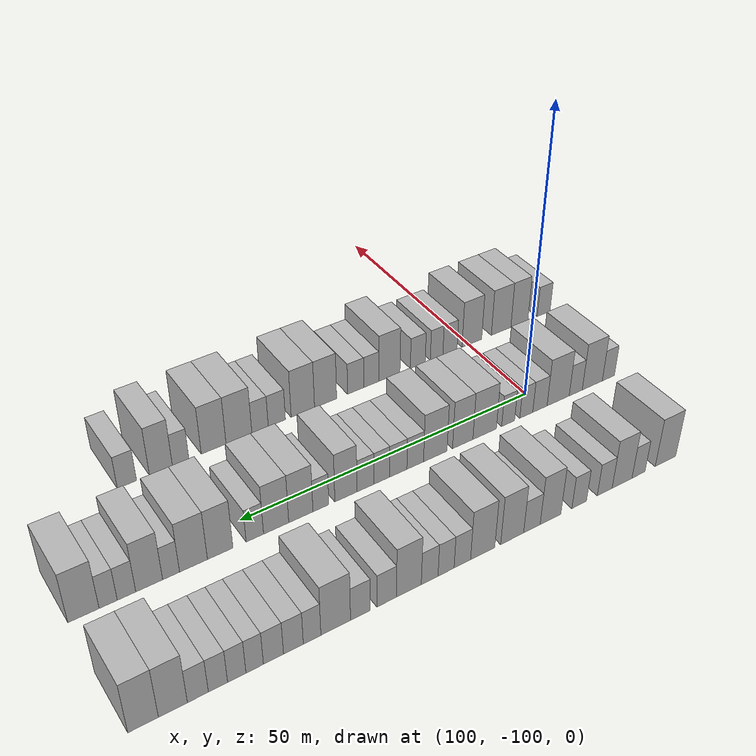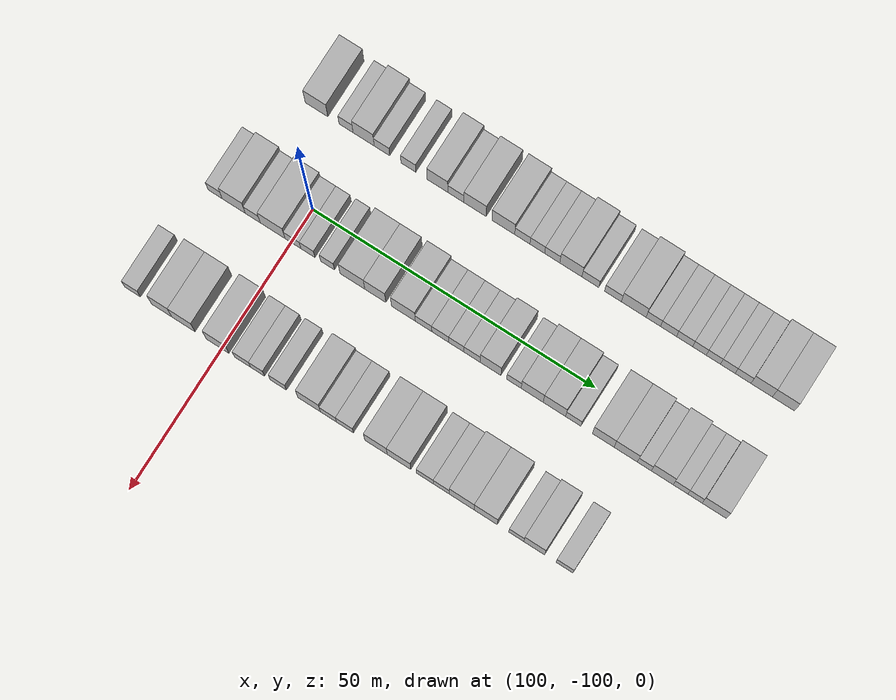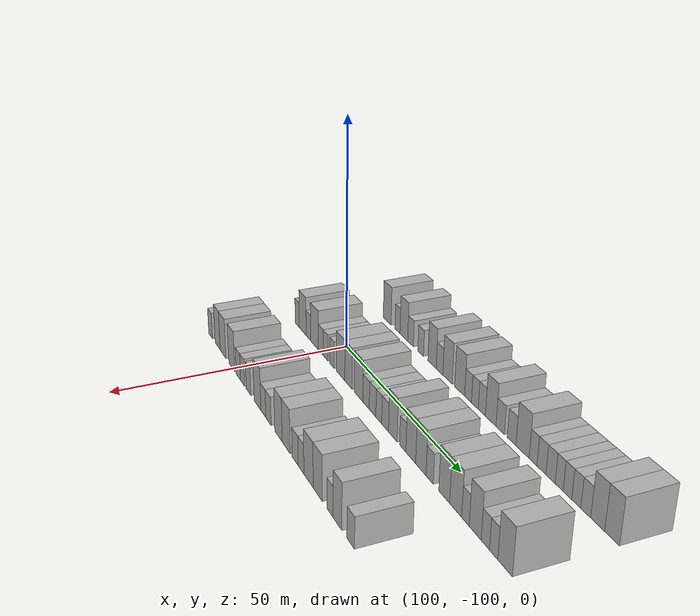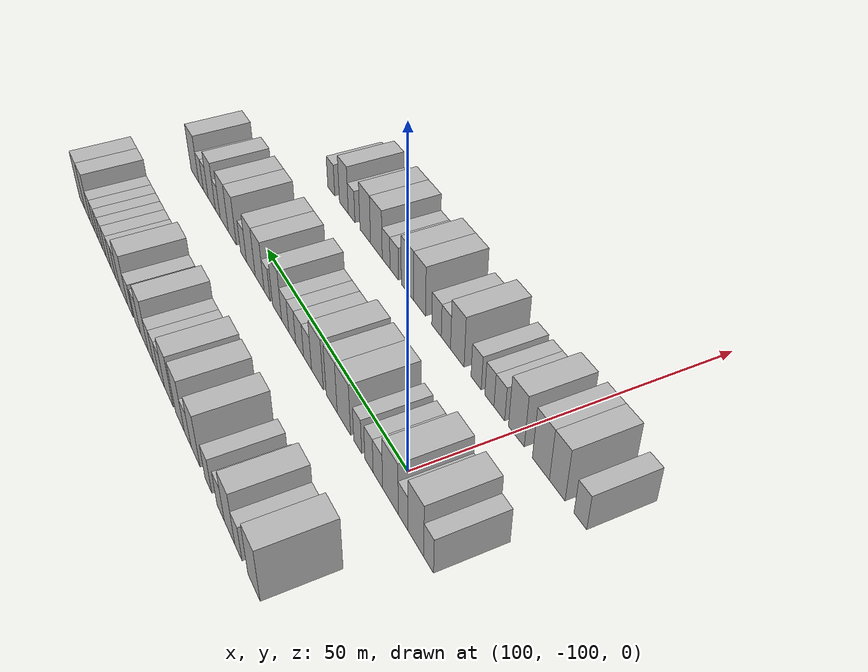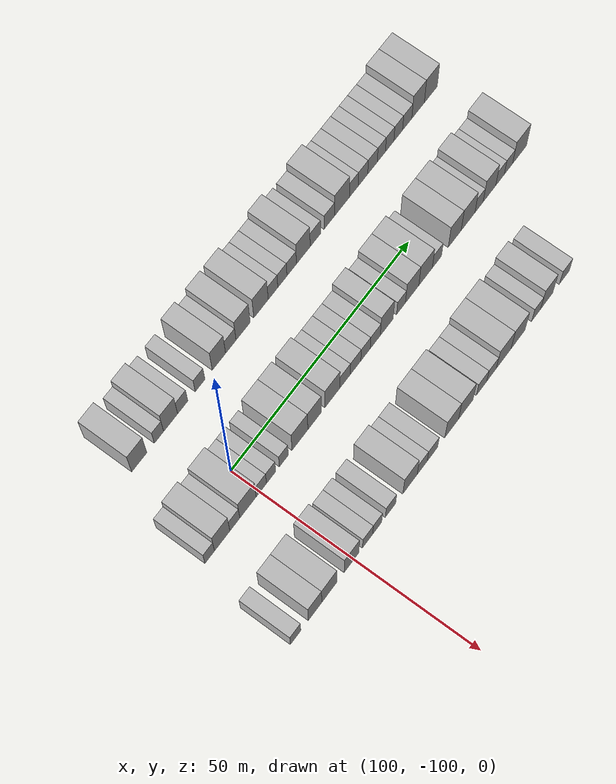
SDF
<sdf version="1.6">
 <world name="default">
  <model name="building_582">
   <static>1</static>
   <pose>82.0000 -107.8213 0 0.000000 0.000000 0.000000</pose>
   <link name="link">
    <pose>0 0 4.50 0 0 0</pose>
    <collision name="collision"><geometry><box><size>10.0000 4.0475 9.0000</size></box></geometry></collision>
    <visual name="visual">
     <cast_shadows>0</cast_shadows>
     <geometry><box><size>10.0000 4.0475 9.0000</size></box></geometry>
     <material>
      <script>
       <uri>model://HANNAS_wall/materials/scripts</uri>
       <uri>model://HANNAS_wall/materials/textures</uri>
       <name>vrc/HANNAS_wall</name>
      </script>
     </material>
    </visual>
   </link>
  </model>
  <model name="building_583">
   <static>1</static>
   <pose>82.0000 -102.5463 0 0.000000 0.000000 0.000000</pose>
   <link name="link">
    <pose>0 0 3.00 0 0 0</pose>
    <collision name="collision"><geometry><box><size>10.0000 2.5025 6.0000</size></box></geometry></collision>
    <visual name="visual">
     <cast_shadows>0</cast_shadows>
     <geometry><box><size>10.0000 2.5025 6.0000</size></box></geometry>
     <material>
      <script>
       <uri>model://HANNAS_wall/materials/scripts</uri>
       <uri>model://HANNAS_wall/materials/textures</uri>
       <name>vrc/HANNAS_wall</name>
      </script>
     </material>
    </visual>
   </link>
  </model>
  <model name="building_584">
   <static>1</static>
   <pose>82.0000 -99.4051 0 0.000000 0.000000 0.000000</pose>
   <link name="link">
    <pose>0 0 4.50 0 0 0</pose>
    <collision name="collision"><geometry><box><size>10.0000 3.7798 9.0000</size></box></geometry></collision>
    <visual name="visual">
     <cast_shadows>0</cast_shadows>
     <geometry><box><size>10.0000 3.7798 9.0000</size></box></geometry>
     <material>
      <script>
       <uri>model://HANNAS_wall/materials/scripts</uri>
       <uri>model://HANNAS_wall/materials/textures</uri>
       <name>vrc/HANNAS_wall</name>
      </script>
     </material>
    </visual>
   </link>
  </model>
  <model name="building_585">
   <static>1</static>
   <pose>82.0000 -96.1296 0 0.000000 0.000000 0.000000</pose>
   <link name="link">
    <pose>0 0 3.00 0 0 0</pose>
    <collision name="collision"><geometry><box><size>10.0000 2.7714 6.0000</size></box></geometry></collision>
    <visual name="visual">
     <cast_shadows>0</cast_shadows>
     <geometry><box><size>10.0000 2.7714 6.0000</size></box></geometry>
     <material>
      <script>
       <uri>model://HANNAS_wall/materials/scripts</uri>
       <uri>model://HANNAS_wall/materials/textures</uri>
       <name>vrc/HANNAS_wall</name>
      </script>
     </material>
    </visual>
   </link>
  </model>
  <model name="building_586">
   <static>1</static>
   <pose>82.0000 -91.4164 0 0.000000 0.000000 0.000000</pose>
   <link name="link">
    <pose>0 0 3.00 0 0 0</pose>
    <collision name="collision"><geometry><box><size>10.0000 2.6551 6.0000</size></box></geometry></collision>
    <visual name="visual">
     <cast_shadows>0</cast_shadows>
     <geometry><box><size>10.0000 2.6551 6.0000</size></box></geometry>
     <material>
      <script>
       <uri>model://HANNAS_wall/materials/scripts</uri>
       <uri>model://HANNAS_wall/materials/textures</uri>
       <name>vrc/HANNAS_wall</name>
      </script>
     </material>
    </visual>
   </link>
  </model>
  <model name="building_587">
   <static>1</static>
   <pose>82.0000 -86.2519 0 0.000000 0.000000 0.000000</pose>
   <link name="link">
    <pose>0 0 4.50 0 0 0</pose>
    <collision name="collision"><geometry><box><size>10.0000 3.6738 9.0000</size></box></geometry></collision>
    <visual name="visual">
     <cast_shadows>0</cast_shadows>
     <geometry><box><size>10.0000 3.6738 9.0000</size></box></geometry>
     <material>
      <script>
       <uri>model://HANNAS_wall/materials/scripts</uri>
       <uri>model://HANNAS_wall/materials/textures</uri>
       <name>vrc/HANNAS_wall</name>
      </script>
     </material>
    </visual>
   </link>
  </model>
  <model name="building_588">
   <static>1</static>
   <pose>82.0000 -82.9739 0 0.000000 0.000000 0.000000</pose>
   <link name="link">
    <pose>0 0 3.00 0 0 0</pose>
    <collision name="collision"><geometry><box><size>10.0000 2.8821 6.0000</size></box></geometry></collision>
    <visual name="visual">
     <cast_shadows>0</cast_shadows>
     <geometry><box><size>10.0000 2.8821 6.0000</size></box></geometry>
     <material>
      <script>
       <uri>model://HANNAS_wall/materials/scripts</uri>
       <uri>model://HANNAS_wall/materials/textures</uri>
       <name>vrc/HANNAS_wall</name>
      </script>
     </material>
    </visual>
   </link>
  </model>
  <model name="building_589">
   <static>1</static>
   <pose>82.0000 -79.5646 0 0.000000 0.000000 0.000000</pose>
   <link name="link">
    <pose>0 0 4.50 0 0 0</pose>
    <collision name="collision"><geometry><box><size>10.0000 3.9365 9.0000</size></box></geometry></collision>
    <visual name="visual">
     <cast_shadows>0</cast_shadows>
     <geometry><box><size>10.0000 3.9365 9.0000</size></box></geometry>
     <material>
      <script>
       <uri>model://HANNAS_wall/materials/scripts</uri>
       <uri>model://HANNAS_wall/materials/textures</uri>
       <name>vrc/HANNAS_wall</name>
      </script>
     </material>
    </visual>
   </link>
  </model>
  <model name="building_590">
   <static>1</static>
   <pose>82.0000 -74.5738 0 0.000000 0.000000 0.000000</pose>
   <link name="link">
    <pose>0 0 4.50 0 0 0</pose>
    <collision name="collision"><geometry><box><size>10.0000 4.0450 9.0000</size></box></geometry></collision>
    <visual name="visual">
     <cast_shadows>0</cast_shadows>
     <geometry><box><size>10.0000 4.0450 9.0000</size></box></geometry>
     <material>
      <script>
       <uri>model://HANNAS_wall/materials/scripts</uri>
       <uri>model://HANNAS_wall/materials/textures</uri>
       <name>vrc/HANNAS_wall</name>
      </script>
     </material>
    </visual>
   </link>
  </model>
  <model name="building_591">
   <static>1</static>
   <pose>82.0000 -71.2009 0 0.000000 0.000000 0.000000</pose>
   <link name="link">
    <pose>0 0 3.00 0 0 0</pose>
    <collision name="collision"><geometry><box><size>10.0000 2.7009 6.0000</size></box></geometry></collision>
    <visual name="visual">
     <cast_shadows>0</cast_shadows>
     <geometry><box><size>10.0000 2.7009 6.0000</size></box></geometry>
     <material>
      <script>
       <uri>model://HANNAS_wall/materials/scripts</uri>
       <uri>model://HANNAS_wall/materials/textures</uri>
       <name>vrc/HANNAS_wall</name>
      </script>
     </material>
    </visual>
   </link>
  </model>
  <model name="building_592">
   <static>1</static>
   <pose>82.0000 -68.5526 0 0.000000 0.000000 0.000000</pose>
   <link name="link">
    <pose>0 0 3.00 0 0 0</pose>
    <collision name="collision"><geometry><box><size>10.0000 2.5957 6.0000</size></box></geometry></collision>
    <visual name="visual">
     <cast_shadows>0</cast_shadows>
     <geometry><box><size>10.0000 2.5957 6.0000</size></box></geometry>
     <material>
      <script>
       <uri>model://HANNAS_wall/materials/scripts</uri>
       <uri>model://HANNAS_wall/materials/textures</uri>
       <name>vrc/HANNAS_wall</name>
      </script>
     </material>
    </visual>
   </link>
  </model>
  <model name="building_593">
   <static>1</static>
   <pose>82.0000 -65.9166 0 0.000000 0.000000 0.000000</pose>
   <link name="link">
    <pose>0 0 3.00 0 0 0</pose>
    <collision name="collision"><geometry><box><size>10.0000 2.6763 6.0000</size></box></geometry></collision>
    <visual name="visual">
     <cast_shadows>0</cast_shadows>
     <geometry><box><size>10.0000 2.6763 6.0000</size></box></geometry>
     <material>
      <script>
       <uri>model://HANNAS_wall/materials/scripts</uri>
       <uri>model://HANNAS_wall/materials/textures</uri>
       <name>vrc/HANNAS_wall</name>
      </script>
     </material>
    </visual>
   </link>
  </model>
  <model name="building_594">
   <static>1</static>
   <pose>82.0000 -62.6206 0 0.000000 0.000000 0.000000</pose>
   <link name="link">
    <pose>0 0 4.50 0 0 0</pose>
    <collision name="collision"><geometry><box><size>10.0000 3.9156 9.0000</size></box></geometry></collision>
    <visual name="visual">
     <cast_shadows>0</cast_shadows>
     <geometry><box><size>10.0000 3.9156 9.0000</size></box></geometry>
     <material>
      <script>
       <uri>model://HANNAS_wall/materials/scripts</uri>
       <uri>model://HANNAS_wall/materials/textures</uri>
       <name>vrc/HANNAS_wall</name>
      </script>
     </material>
    </visual>
   </link>
  </model>
  <model name="building_595">
   <static>1</static>
   <pose>82.0000 -59.1735 0 0.000000 0.000000 0.000000</pose>
   <link name="link">
    <pose>0 0 3.00 0 0 0</pose>
    <collision name="collision"><geometry><box><size>10.0000 2.9787 6.0000</size></box></geometry></collision>
    <visual name="visual">
     <cast_shadows>0</cast_shadows>
     <geometry><box><size>10.0000 2.9787 6.0000</size></box></geometry>
     <material>
      <script>
       <uri>model://HANNAS_wall/materials/scripts</uri>
       <uri>model://HANNAS_wall/materials/textures</uri>
       <name>vrc/HANNAS_wall</name>
      </script>
     </material>
    </visual>
   </link>
  </model>
  <model name="building_596">
   <static>1</static>
   <pose>82.0000 -55.1940 0 0.000000 0.000000 0.000000</pose>
   <link name="link">
    <pose>0 0 3.00 0 0 0</pose>
    <collision name="collision"><geometry><box><size>10.0000 2.9802 6.0000</size></box></geometry></collision>
    <visual name="visual">
     <cast_shadows>0</cast_shadows>
     <geometry><box><size>10.0000 2.9802 6.0000</size></box></geometry>
     <material>
      <script>
       <uri>model://HANNAS_wall/materials/scripts</uri>
       <uri>model://HANNAS_wall/materials/textures</uri>
       <name>vrc/HANNAS_wall</name>
      </script>
     </material>
    </visual>
   </link>
  </model>
  <model name="building_597">
   <static>1</static>
   <pose>82.0000 -51.5275 0 0.000000 0.000000 0.000000</pose>
   <link name="link">
    <pose>0 0 4.50 0 0 0</pose>
    <collision name="collision"><geometry><box><size>10.0000 4.3529 9.0000</size></box></geometry></collision>
    <visual name="visual">
     <cast_shadows>0</cast_shadows>
     <geometry><box><size>10.0000 4.3529 9.0000</size></box></geometry>
     <material>
      <script>
       <uri>model://HANNAS_wall/materials/scripts</uri>
       <uri>model://HANNAS_wall/materials/textures</uri>
       <name>vrc/HANNAS_wall</name>
      </script>
     </material>
    </visual>
   </link>
  </model>
  <model name="building_598">
   <static>1</static>
   <pose>82.0000 -48.0804 0 0.000000 0.000000 0.000000</pose>
   <link name="link">
    <pose>0 0 3.00 0 0 0</pose>
    <collision name="collision"><geometry><box><size>10.0000 2.5413 6.0000</size></box></geometry></collision>
    <visual name="visual">
     <cast_shadows>0</cast_shadows>
     <geometry><box><size>10.0000 2.5413 6.0000</size></box></geometry>
     <material>
      <script>
       <uri>model://HANNAS_wall/materials/scripts</uri>
       <uri>model://HANNAS_wall/materials/textures</uri>
       <name>vrc/HANNAS_wall</name>
      </script>
     </material>
    </visual>
   </link>
  </model>
  <model name="building_599">
   <static>1</static>
   <pose>82.0000 -45.4038 0 0.000000 0.000000 0.000000</pose>
   <link name="link">
    <pose>0 0 3.00 0 0 0</pose>
    <collision name="collision"><geometry><box><size>10.0000 2.8120 6.0000</size></box></geometry></collision>
    <visual name="visual">
     <cast_shadows>0</cast_shadows>
     <geometry><box><size>10.0000 2.8120 6.0000</size></box></geometry>
     <material>
      <script>
       <uri>model://HANNAS_wall/materials/scripts</uri>
       <uri>model://HANNAS_wall/materials/textures</uri>
       <name>vrc/HANNAS_wall</name>
      </script>
     </material>
    </visual>
   </link>
  </model>
  <model name="building_600">
   <static>1</static>
   <pose>82.0000 -42.5910 0 0.000000 0.000000 0.000000</pose>
   <link name="link">
    <pose>0 0 3.00 0 0 0</pose>
    <collision name="collision"><geometry><box><size>10.0000 2.8135 6.0000</size></box></geometry></collision>
    <visual name="visual">
     <cast_shadows>0</cast_shadows>
     <geometry><box><size>10.0000 2.8135 6.0000</size></box></geometry>
     <material>
      <script>
       <uri>model://HANNAS_wall/materials/scripts</uri>
       <uri>model://HANNAS_wall/materials/textures</uri>
       <name>vrc/HANNAS_wall</name>
      </script>
     </material>
    </visual>
   </link>
  </model>
  <model name="building_601">
   <static>1</static>
   <pose>82.0000 -39.9831 0 0.000000 0.000000 0.000000</pose>
   <link name="link">
    <pose>0 0 3.00 0 0 0</pose>
    <collision name="collision"><geometry><box><size>10.0000 2.4023 6.0000</size></box></geometry></collision>
    <visual name="visual">
     <cast_shadows>0</cast_shadows>
     <geometry><box><size>10.0000 2.4023 6.0000</size></box></geometry>
     <material>
      <script>
       <uri>model://HANNAS_wall/materials/scripts</uri>
       <uri>model://HANNAS_wall/materials/textures</uri>
       <name>vrc/HANNAS_wall</name>
      </script>
     </material>
    </visual>
   </link>
  </model>
  <model name="building_602">
   <static>1</static>
   <pose>82.0000 -37.5364 0 0.000000 0.000000 0.000000</pose>
   <link name="link">
    <pose>0 0 3.00 0 0 0</pose>
    <collision name="collision"><geometry><box><size>10.0000 2.4911 6.0000</size></box></geometry></collision>
    <visual name="visual">
     <cast_shadows>0</cast_shadows>
     <geometry><box><size>10.0000 2.4911 6.0000</size></box></geometry>
     <material>
      <script>
       <uri>model://HANNAS_wall/materials/scripts</uri>
       <uri>model://HANNAS_wall/materials/textures</uri>
       <name>vrc/HANNAS_wall</name>
      </script>
     </material>
    </visual>
   </link>
  </model>
  <model name="building_603">
   <static>1</static>
   <pose>82.0000 -35.0027 0 0.000000 0.000000 0.000000</pose>
   <link name="link">
    <pose>0 0 3.00 0 0 0</pose>
    <collision name="collision"><geometry><box><size>10.0000 2.5762 6.0000</size></box></geometry></collision>
    <visual name="visual">
     <cast_shadows>0</cast_shadows>
     <geometry><box><size>10.0000 2.5762 6.0000</size></box></geometry>
     <material>
      <script>
       <uri>model://HANNAS_wall/materials/scripts</uri>
       <uri>model://HANNAS_wall/materials/textures</uri>
       <name>vrc/HANNAS_wall</name>
      </script>
     </material>
    </visual>
   </link>
  </model>
  <model name="building_604">
   <static>1</static>
   <pose>82.0000 -32.3365 0 0.000000 0.000000 0.000000</pose>
   <link name="link">
    <pose>0 0 3.00 0 0 0</pose>
    <collision name="collision"><geometry><box><size>10.0000 2.7563 6.0000</size></box></geometry></collision>
    <visual name="visual">
     <cast_shadows>0</cast_shadows>
     <geometry><box><size>10.0000 2.7563 6.0000</size></box></geometry>
     <material>
      <script>
       <uri>model://HANNAS_wall/materials/scripts</uri>
       <uri>model://HANNAS_wall/materials/textures</uri>
       <name>vrc/HANNAS_wall</name>
      </script>
     </material>
    </visual>
   </link>
  </model>
  <model name="building_605">
   <static>1</static>
   <pose>82.0000 -29.0839 0 0.000000 0.000000 0.000000</pose>
   <link name="link">
    <pose>0 0 4.50 0 0 0</pose>
    <collision name="collision"><geometry><box><size>10.0000 3.7489 9.0000</size></box></geometry></collision>
    <visual name="visual">
     <cast_shadows>0</cast_shadows>
     <geometry><box><size>10.0000 3.7489 9.0000</size></box></geometry>
     <material>
      <script>
       <uri>model://HANNAS_wall/materials/scripts</uri>
       <uri>model://HANNAS_wall/materials/textures</uri>
       <name>vrc/HANNAS_wall</name>
      </script>
     </material>
    </visual>
   </link>
  </model>
  <model name="building_606">
   <static>1</static>
   <pose>82.0000 -25.2706 0 0.000000 0.000000 0.000000</pose>
   <link name="link">
    <pose>0 0 4.50 0 0 0</pose>
    <collision name="collision"><geometry><box><size>10.0000 3.8776 9.0000</size></box></geometry></collision>
    <visual name="visual">
     <cast_shadows>0</cast_shadows>
     <geometry><box><size>10.0000 3.8776 9.0000</size></box></geometry>
     <material>
      <script>
       <uri>model://HANNAS_wall/materials/scripts</uri>
       <uri>model://HANNAS_wall/materials/textures</uri>
       <name>vrc/HANNAS_wall</name>
      </script>
     </material>
    </visual>
   </link>
  </model>
  <model name="building_760">
   <static>1</static>
   <pose>101.0000 -113.5877 0 0.000000 0.000000 0.000000</pose>
   <link name="link">
    <pose>0 0 3.00 0 0 0</pose>
    <collision name="collision"><geometry><box><size>10.0000 2.5376 6.0000</size></box></geometry></collision>
    <visual name="visual">
     <cast_shadows>0</cast_shadows>
     <geometry><box><size>10.0000 2.5376 6.0000</size></box></geometry>
     <material>
      <script>
       <uri>model://HANNAS_wall/materials/scripts</uri>
       <uri>model://HANNAS_wall/materials/textures</uri>
       <name>vrc/HANNAS_wall</name>
      </script>
     </material>
    </visual>
   </link>
  </model>
  <model name="building_761">
   <static>1</static>
   <pose>101.0000 -110.2544 0 0.000000 0.000000 0.000000</pose>
   <link name="link">
    <pose>0 0 4.50 0 0 0</pose>
    <collision name="collision"><geometry><box><size>10.0000 4.1289 9.0000</size></box></geometry></collision>
    <visual name="visual">
     <cast_shadows>0</cast_shadows>
     <geometry><box><size>10.0000 4.1289 9.0000</size></box></geometry>
     <material>
      <script>
       <uri>model://HANNAS_wall/materials/scripts</uri>
       <uri>model://HANNAS_wall/materials/textures</uri>
       <name>vrc/HANNAS_wall</name>
      </script>
     </material>
    </visual>
   </link>
  </model>
  <model name="building_762">
   <static>1</static>
   <pose>101.0000 -106.8597 0 0.000000 0.000000 0.000000</pose>
   <link name="link">
    <pose>0 0 3.00 0 0 0</pose>
    <collision name="collision"><geometry><box><size>10.0000 2.6605 6.0000</size></box></geometry></collision>
    <visual name="visual">
     <cast_shadows>0</cast_shadows>
     <geometry><box><size>10.0000 2.6605 6.0000</size></box></geometry>
     <material>
      <script>
       <uri>model://HANNAS_wall/materials/scripts</uri>
       <uri>model://HANNAS_wall/materials/textures</uri>
       <name>vrc/HANNAS_wall</name>
      </script>
     </material>
    </visual>
   </link>
  </model>
  <model name="building_763">
   <static>1</static>
   <pose>101.0000 -103.3192 0 0.000000 0.000000 0.000000</pose>
   <link name="link">
    <pose>0 0 4.50 0 0 0</pose>
    <collision name="collision"><geometry><box><size>10.0000 4.4204 9.0000</size></box></geometry></collision>
    <visual name="visual">
     <cast_shadows>0</cast_shadows>
     <geometry><box><size>10.0000 4.4204 9.0000</size></box></geometry>
     <material>
      <script>
       <uri>model://HANNAS_wall/materials/scripts</uri>
       <uri>model://HANNAS_wall/materials/textures</uri>
       <name>vrc/HANNAS_wall</name>
      </script>
     </material>
    </visual>
   </link>
  </model>
  <model name="building_764">
   <static>1</static>
   <pose>101.0000 -99.7057 0 0.000000 0.000000 0.000000</pose>
   <link name="link">
    <pose>0 0 3.00 0 0 0</pose>
    <collision name="collision"><geometry><box><size>10.0000 2.8065 6.0000</size></box></geometry></collision>
    <visual name="visual">
     <cast_shadows>0</cast_shadows>
     <geometry><box><size>10.0000 2.8065 6.0000</size></box></geometry>
     <material>
      <script>
       <uri>model://HANNAS_wall/materials/scripts</uri>
       <uri>model://HANNAS_wall/materials/textures</uri>
       <name>vrc/HANNAS_wall</name>
      </script>
     </material>
    </visual>
   </link>
  </model>
  <model name="building_765">
   <static>1</static>
   <pose>101.0000 -97.0453 0 0.000000 0.000000 0.000000</pose>
   <link name="link">
    <pose>0 0 3.00 0 0 0</pose>
    <collision name="collision"><geometry><box><size>10.0000 2.5144 6.0000</size></box></geometry></collision>
    <visual name="visual">
     <cast_shadows>0</cast_shadows>
     <geometry><box><size>10.0000 2.5144 6.0000</size></box></geometry>
     <material>
      <script>
       <uri>model://HANNAS_wall/materials/scripts</uri>
       <uri>model://HANNAS_wall/materials/textures</uri>
       <name>vrc/HANNAS_wall</name>
      </script>
     </material>
    </visual>
   </link>
  </model>
  <model name="building_766">
   <static>1</static>
   <pose>101.0000 -93.5566 0 0.000000 0.000000 0.000000</pose>
   <link name="link">
    <pose>0 0 3.00 0 0 0</pose>
    <collision name="collision"><geometry><box><size>10.0000 2.4629 6.0000</size></box></geometry></collision>
    <visual name="visual">
     <cast_shadows>0</cast_shadows>
     <geometry><box><size>10.0000 2.4629 6.0000</size></box></geometry>
     <material>
      <script>
       <uri>model://HANNAS_wall/materials/scripts</uri>
       <uri>model://HANNAS_wall/materials/textures</uri>
       <name>vrc/HANNAS_wall</name>
      </script>
     </material>
    </visual>
   </link>
  </model>
  <model name="building_767">
   <static>1</static>
   <pose>101.0000 -89.1333 0 0.000000 0.000000 0.000000</pose>
   <link name="link">
    <pose>0 0 4.50 0 0 0</pose>
    <collision name="collision"><geometry><box><size>10.0000 4.3838 9.0000</size></box></geometry></collision>
    <visual name="visual">
     <cast_shadows>0</cast_shadows>
     <geometry><box><size>10.0000 4.3838 9.0000</size></box></geometry>
     <material>
      <script>
       <uri>model://HANNAS_wall/materials/scripts</uri>
       <uri>model://HANNAS_wall/materials/textures</uri>
       <name>vrc/HANNAS_wall</name>
      </script>
     </material>
    </visual>
   </link>
  </model>
  <model name="building_768">
   <static>1</static>
   <pose>101.0000 -85.0721 0 0.000000 0.000000 0.000000</pose>
   <link name="link">
    <pose>0 0 4.50 0 0 0</pose>
    <collision name="collision"><geometry><box><size>10.0000 3.7385 9.0000</size></box></geometry></collision>
    <visual name="visual">
     <cast_shadows>0</cast_shadows>
     <geometry><box><size>10.0000 3.7385 9.0000</size></box></geometry>
     <material>
      <script>
       <uri>model://HANNAS_wall/materials/scripts</uri>
       <uri>model://HANNAS_wall/materials/textures</uri>
       <name>vrc/HANNAS_wall</name>
      </script>
     </material>
    </visual>
   </link>
  </model>
  <model name="building_769">
   <static>1</static>
   <pose>101.0000 -80.1003 0 0.000000 0.000000 0.000000</pose>
   <link name="link">
    <pose>0 0 4.50 0 0 0</pose>
    <collision name="collision"><geometry><box><size>10.0000 4.2051 9.0000</size></box></geometry></collision>
    <visual name="visual">
     <cast_shadows>0</cast_shadows>
     <geometry><box><size>10.0000 4.2051 9.0000</size></box></geometry>
     <material>
      <script>
       <uri>model://HANNAS_wall/materials/scripts</uri>
       <uri>model://HANNAS_wall/materials/textures</uri>
       <name>vrc/HANNAS_wall</name>
      </script>
     </material>
    </visual>
   </link>
  </model>
  <model name="building_770">
   <static>1</static>
   <pose>101.0000 -76.5368 0 0.000000 0.000000 0.000000</pose>
   <link name="link">
    <pose>0 0 3.00 0 0 0</pose>
    <collision name="collision"><geometry><box><size>10.0000 2.9220 6.0000</size></box></geometry></collision>
    <visual name="visual">
     <cast_shadows>0</cast_shadows>
     <geometry><box><size>10.0000 2.9220 6.0000</size></box></geometry>
     <material>
      <script>
       <uri>model://HANNAS_wall/materials/scripts</uri>
       <uri>model://HANNAS_wall/materials/textures</uri>
       <name>vrc/HANNAS_wall</name>
      </script>
     </material>
    </visual>
   </link>
  </model>
  <model name="building_771">
   <static>1</static>
   <pose>101.0000 -73.5782 0 0.000000 0.000000 0.000000</pose>
   <link name="link">
    <pose>0 0 3.00 0 0 0</pose>
    <collision name="collision"><geometry><box><size>10.0000 2.9953 6.0000</size></box></geometry></collision>
    <visual name="visual">
     <cast_shadows>0</cast_shadows>
     <geometry><box><size>10.0000 2.9953 6.0000</size></box></geometry>
     <material>
      <script>
       <uri>model://HANNAS_wall/materials/scripts</uri>
       <uri>model://HANNAS_wall/materials/textures</uri>
       <name>vrc/HANNAS_wall</name>
      </script>
     </material>
    </visual>
   </link>
  </model>
  <model name="building_772">
   <static>1</static>
   <pose>101.0000 -70.7513 0 0.000000 0.000000 0.000000</pose>
   <link name="link">
    <pose>0 0 3.00 0 0 0</pose>
    <collision name="collision"><geometry><box><size>10.0000 2.6585 6.0000</size></box></geometry></collision>
    <visual name="visual">
     <cast_shadows>0</cast_shadows>
     <geometry><box><size>10.0000 2.6585 6.0000</size></box></geometry>
     <material>
      <script>
       <uri>model://HANNAS_wall/materials/scripts</uri>
       <uri>model://HANNAS_wall/materials/textures</uri>
       <name>vrc/HANNAS_wall</name>
      </script>
     </material>
    </visual>
   </link>
  </model>
  <model name="building_773">
   <static>1</static>
   <pose>101.0000 -67.9836 0 0.000000 0.000000 0.000000</pose>
   <link name="link">
    <pose>0 0 3.00 0 0 0</pose>
    <collision name="collision"><geometry><box><size>10.0000 2.8769 6.0000</size></box></geometry></collision>
    <visual name="visual">
     <cast_shadows>0</cast_shadows>
     <geometry><box><size>10.0000 2.8769 6.0000</size></box></geometry>
     <material>
      <script>
       <uri>model://HANNAS_wall/materials/scripts</uri>
       <uri>model://HANNAS_wall/materials/textures</uri>
       <name>vrc/HANNAS_wall</name>
      </script>
     </material>
    </visual>
   </link>
  </model>
  <model name="building_774">
   <static>1</static>
   <pose>101.0000 -64.7111 0 0.000000 0.000000 0.000000</pose>
   <link name="link">
    <pose>0 0 4.50 0 0 0</pose>
    <collision name="collision"><geometry><box><size>10.0000 3.6681 9.0000</size></box></geometry></collision>
    <visual name="visual">
     <cast_shadows>0</cast_shadows>
     <geometry><box><size>10.0000 3.6681 9.0000</size></box></geometry>
     <material>
      <script>
       <uri>model://HANNAS_wall/materials/scripts</uri>
       <uri>model://HANNAS_wall/materials/textures</uri>
       <name>vrc/HANNAS_wall</name>
      </script>
     </material>
    </visual>
   </link>
  </model>
  <model name="building_775">
   <static>1</static>
   <pose>101.0000 -60.5958 0 0.000000 0.000000 0.000000</pose>
   <link name="link">
    <pose>0 0 3.00 0 0 0</pose>
    <collision name="collision"><geometry><box><size>10.0000 2.5626 6.0000</size></box></geometry></collision>
    <visual name="visual">
     <cast_shadows>0</cast_shadows>
     <geometry><box><size>10.0000 2.5626 6.0000</size></box></geometry>
     <material>
      <script>
       <uri>model://HANNAS_wall/materials/scripts</uri>
       <uri>model://HANNAS_wall/materials/textures</uri>
       <name>vrc/HANNAS_wall</name>
      </script>
     </material>
    </visual>
   </link>
  </model>
  <model name="building_776">
   <static>1</static>
   <pose>101.0000 -57.3797 0 0.000000 0.000000 0.000000</pose>
   <link name="link">
    <pose>0 0 4.50 0 0 0</pose>
    <collision name="collision"><geometry><box><size>10.0000 3.8697 9.0000</size></box></geometry></collision>
    <visual name="visual">
     <cast_shadows>0</cast_shadows>
     <geometry><box><size>10.0000 3.8697 9.0000</size></box></geometry>
     <material>
      <script>
       <uri>model://HANNAS_wall/materials/scripts</uri>
       <uri>model://HANNAS_wall/materials/textures</uri>
       <name>vrc/HANNAS_wall</name>
      </script>
     </material>
    </visual>
   </link>
  </model>
  <model name="building_777">
   <static>1</static>
   <pose>101.0000 -53.4738 0 0.000000 0.000000 0.000000</pose>
   <link name="link">
    <pose>0 0 4.50 0 0 0</pose>
    <collision name="collision"><geometry><box><size>10.0000 3.9419 9.0000</size></box></geometry></collision>
    <visual name="visual">
     <cast_shadows>0</cast_shadows>
     <geometry><box><size>10.0000 3.9419 9.0000</size></box></geometry>
     <material>
      <script>
       <uri>model://HANNAS_wall/materials/scripts</uri>
       <uri>model://HANNAS_wall/materials/textures</uri>
       <name>vrc/HANNAS_wall</name>
      </script>
     </material>
    </visual>
   </link>
  </model>
  <model name="building_778">
   <static>1</static>
   <pose>101.0000 -50.1615 0 0.000000 0.000000 0.000000</pose>
   <link name="link">
    <pose>0 0 3.00 0 0 0</pose>
    <collision name="collision"><geometry><box><size>10.0000 2.6828 6.0000</size></box></geometry></collision>
    <visual name="visual">
     <cast_shadows>0</cast_shadows>
     <geometry><box><size>10.0000 2.6828 6.0000</size></box></geometry>
     <material>
      <script>
       <uri>model://HANNAS_wall/materials/scripts</uri>
       <uri>model://HANNAS_wall/materials/textures</uri>
       <name>vrc/HANNAS_wall</name>
      </script>
     </material>
    </visual>
   </link>
  </model>
  <model name="building_779">
   <static>1</static>
   <pose>101.0000 -44.9124 0 0.000000 0.000000 0.000000</pose>
   <link name="link">
    <pose>0 0 4.50 0 0 0</pose>
    <collision name="collision"><geometry><box><size>10.0000 3.8153 9.0000</size></box></geometry></collision>
    <visual name="visual">
     <cast_shadows>0</cast_shadows>
     <geometry><box><size>10.0000 3.8153 9.0000</size></box></geometry>
     <material>
      <script>
       <uri>model://HANNAS_wall/materials/scripts</uri>
       <uri>model://HANNAS_wall/materials/textures</uri>
       <name>vrc/HANNAS_wall</name>
      </script>
     </material>
    </visual>
   </link>
  </model>
  <model name="building_780">
   <static>1</static>
   <pose>101.0000 -40.9618 0 0.000000 0.000000 0.000000</pose>
   <link name="link">
    <pose>0 0 4.50 0 0 0</pose>
    <collision name="collision"><geometry><box><size>10.0000 4.0858 9.0000</size></box></geometry></collision>
    <visual name="visual">
     <cast_shadows>0</cast_shadows>
     <geometry><box><size>10.0000 4.0858 9.0000</size></box></geometry>
     <material>
      <script>
       <uri>model://HANNAS_wall/materials/scripts</uri>
       <uri>model://HANNAS_wall/materials/textures</uri>
       <name>vrc/HANNAS_wall</name>
      </script>
     </material>
    </visual>
   </link>
  </model>
  <model name="building_781">
   <static>1</static>
   <pose>101.0000 -37.7002 0 0.000000 0.000000 0.000000</pose>
   <link name="link">
    <pose>0 0 3.00 0 0 0</pose>
    <collision name="collision"><geometry><box><size>10.0000 2.4376 6.0000</size></box></geometry></collision>
    <visual name="visual">
     <cast_shadows>0</cast_shadows>
     <geometry><box><size>10.0000 2.4376 6.0000</size></box></geometry>
     <material>
      <script>
       <uri>model://HANNAS_wall/materials/scripts</uri>
       <uri>model://HANNAS_wall/materials/textures</uri>
       <name>vrc/HANNAS_wall</name>
      </script>
     </material>
    </visual>
   </link>
  </model>
  <model name="building_782">
   <static>1</static>
   <pose>101.0000 -34.5794 0 0.000000 0.000000 0.000000</pose>
   <link name="link">
    <pose>0 0 4.50 0 0 0</pose>
    <collision name="collision"><geometry><box><size>10.0000 3.8040 9.0000</size></box></geometry></collision>
    <visual name="visual">
     <cast_shadows>0</cast_shadows>
     <geometry><box><size>10.0000 3.8040 9.0000</size></box></geometry>
     <material>
      <script>
       <uri>model://HANNAS_wall/materials/scripts</uri>
       <uri>model://HANNAS_wall/materials/textures</uri>
       <name>vrc/HANNAS_wall</name>
      </script>
     </material>
    </visual>
   </link>
  </model>
  <model name="building_783">
   <static>1</static>
   <pose>101.0000 -31.3937 0 0.000000 0.000000 0.000000</pose>
   <link name="link">
    <pose>0 0 3.00 0 0 0</pose>
    <collision name="collision"><geometry><box><size>10.0000 2.5674 6.0000</size></box></geometry></collision>
    <visual name="visual">
     <cast_shadows>0</cast_shadows>
     <geometry><box><size>10.0000 2.5674 6.0000</size></box></geometry>
     <material>
      <script>
       <uri>model://HANNAS_wall/materials/scripts</uri>
       <uri>model://HANNAS_wall/materials/textures</uri>
       <name>vrc/HANNAS_wall</name>
      </script>
     </material>
    </visual>
   </link>
  </model>
  <model name="building_784">
   <static>1</static>
   <pose>101.0000 -28.8646 0 0.000000 0.000000 0.000000</pose>
   <link name="link">
    <pose>0 0 3.00 0 0 0</pose>
    <collision name="collision"><geometry><box><size>10.0000 2.4909 6.0000</size></box></geometry></collision>
    <visual name="visual">
     <cast_shadows>0</cast_shadows>
     <geometry><box><size>10.0000 2.4909 6.0000</size></box></geometry>
     <material>
      <script>
       <uri>model://HANNAS_wall/materials/scripts</uri>
       <uri>model://HANNAS_wall/materials/textures</uri>
       <name>vrc/HANNAS_wall</name>
      </script>
     </material>
    </visual>
   </link>
  </model>
  <model name="building_785">
   <static>1</static>
   <pose>101.0000 -25.5061 0 0.000000 0.000000 0.000000</pose>
   <link name="link">
    <pose>0 0 4.50 0 0 0</pose>
    <collision name="collision"><geometry><box><size>10.0000 4.2259 9.0000</size></box></geometry></collision>
    <visual name="visual">
     <cast_shadows>0</cast_shadows>
     <geometry><box><size>10.0000 4.2259 9.0000</size></box></geometry>
     <material>
      <script>
       <uri>model://HANNAS_wall/materials/scripts</uri>
       <uri>model://HANNAS_wall/materials/textures</uri>
       <name>vrc/HANNAS_wall</name>
      </script>
     </material>
    </visual>
   </link>
  </model>
  <model name="building_942">
   <static>1</static>
   <pose>120.0000 -115.8386 0 0.000000 0.000000 0.000000</pose>
   <link name="link">
    <pose>0 0 3.00 0 0 0</pose>
    <collision name="collision"><geometry><box><size>10.0000 2.7952 6.0000</size></box></geometry></collision>
    <visual name="visual">
     <cast_shadows>0</cast_shadows>
     <geometry><box><size>10.0000 2.7952 6.0000</size></box></geometry>
     <material>
      <script>
       <uri>model://HANNAS_wall/materials/scripts</uri>
       <uri>model://HANNAS_wall/materials/textures</uri>
       <name>vrc/HANNAS_wall</name>
      </script>
     </material>
    </visual>
   </link>
  </model>
  <model name="building_943">
   <static>1</static>
   <pose>120.0000 -110.6328 0 0.000000 0.000000 0.000000</pose>
   <link name="link">
    <pose>0 0 4.50 0 0 0</pose>
    <collision name="collision"><geometry><box><size>10.0000 3.6164 9.0000</size></box></geometry></collision>
    <visual name="visual">
     <cast_shadows>0</cast_shadows>
     <geometry><box><size>10.0000 3.6164 9.0000</size></box></geometry>
     <material>
      <script>
       <uri>model://HANNAS_wall/materials/scripts</uri>
       <uri>model://HANNAS_wall/materials/textures</uri>
       <name>vrc/HANNAS_wall</name>
      </script>
     </material>
    </visual>
   </link>
  </model>
  <model name="building_944">
   <static>1</static>
   <pose>120.0000 -106.7789 0 0.000000 0.000000 0.000000</pose>
   <link name="link">
    <pose>0 0 4.50 0 0 0</pose>
    <collision name="collision"><geometry><box><size>10.0000 4.0914 9.0000</size></box></geometry></collision>
    <visual name="visual">
     <cast_shadows>0</cast_shadows>
     <geometry><box><size>10.0000 4.0914 9.0000</size></box></geometry>
     <material>
      <script>
       <uri>model://HANNAS_wall/materials/scripts</uri>
       <uri>model://HANNAS_wall/materials/textures</uri>
       <name>vrc/HANNAS_wall</name>
      </script>
     </material>
    </visual>
   </link>
  </model>
  <model name="building_945">
   <static>1</static>
   <pose>120.0000 -100.7249 0 0.000000 0.000000 0.000000</pose>
   <link name="link">
    <pose>0 0 4.50 0 0 0</pose>
    <collision name="collision"><geometry><box><size>10.0000 4.0165 9.0000</size></box></geometry></collision>
    <visual name="visual">
     <cast_shadows>0</cast_shadows>
     <geometry><box><size>10.0000 4.0165 9.0000</size></box></geometry>
     <material>
      <script>
       <uri>model://HANNAS_wall/materials/scripts</uri>
       <uri>model://HANNAS_wall/materials/textures</uri>
       <name>vrc/HANNAS_wall</name>
      </script>
     </material>
    </visual>
   </link>
  </model>
  <model name="building_946">
   <static>1</static>
   <pose>120.0000 -96.2980 0 0.000000 0.000000 0.000000</pose>
   <link name="link">
    <pose>0 0 3.00 0 0 0</pose>
    <collision name="collision"><geometry><box><size>10.0000 2.8374 6.0000</size></box></geometry></collision>
    <visual name="visual">
     <cast_shadows>0</cast_shadows>
     <geometry><box><size>10.0000 2.8374 6.0000</size></box></geometry>
     <material>
      <script>
       <uri>model://HANNAS_wall/materials/scripts</uri>
       <uri>model://HANNAS_wall/materials/textures</uri>
       <name>vrc/HANNAS_wall</name>
      </script>
     </material>
    </visual>
   </link>
  </model>
  <model name="building_947">
   <static>1</static>
   <pose>120.0000 -93.6369 0 0.000000 0.000000 0.000000</pose>
   <link name="link">
    <pose>0 0 3.00 0 0 0</pose>
    <collision name="collision"><geometry><box><size>10.0000 2.4848 6.0000</size></box></geometry></collision>
    <visual name="visual">
     <cast_shadows>0</cast_shadows>
     <geometry><box><size>10.0000 2.4848 6.0000</size></box></geometry>
     <material>
      <script>
       <uri>model://HANNAS_wall/materials/scripts</uri>
       <uri>model://HANNAS_wall/materials/textures</uri>
       <name>vrc/HANNAS_wall</name>
      </script>
     </material>
    </visual>
   </link>
  </model>
  <model name="building_948">
   <static>1</static>
   <pose>120.0000 -89.9490 0 0.000000 0.000000 0.000000</pose>
   <link name="link">
    <pose>0 0 3.00 0 0 0</pose>
    <collision name="collision"><geometry><box><size>10.0000 2.8909 6.0000</size></box></geometry></collision>
    <visual name="visual">
     <cast_shadows>0</cast_shadows>
     <geometry><box><size>10.0000 2.8909 6.0000</size></box></geometry>
     <material>
      <script>
       <uri>model://HANNAS_wall/materials/scripts</uri>
       <uri>model://HANNAS_wall/materials/textures</uri>
       <name>vrc/HANNAS_wall</name>
      </script>
     </material>
    </visual>
   </link>
  </model>
  <model name="building_949">
   <static>1</static>
   <pose>120.0000 -84.4951 0 0.000000 0.000000 0.000000</pose>
   <link name="link">
    <pose>0 0 4.50 0 0 0</pose>
    <collision name="collision"><geometry><box><size>10.0000 4.0169 9.0000</size></box></geometry></collision>
    <visual name="visual">
     <cast_shadows>0</cast_shadows>
     <geometry><box><size>10.0000 4.0169 9.0000</size></box></geometry>
     <material>
      <script>
       <uri>model://HANNAS_wall/materials/scripts</uri>
       <uri>model://HANNAS_wall/materials/textures</uri>
       <name>vrc/HANNAS_wall</name>
      </script>
     </material>
    </visual>
   </link>
  </model>
  <model name="building_950">
   <static>1</static>
   <pose>120.0000 -81.0759 0 0.000000 0.000000 0.000000</pose>
   <link name="link">
    <pose>0 0 3.00 0 0 0</pose>
    <collision name="collision"><geometry><box><size>10.0000 2.8215 6.0000</size></box></geometry></collision>
    <visual name="visual">
     <cast_shadows>0</cast_shadows>
     <geometry><box><size>10.0000 2.8215 6.0000</size></box></geometry>
     <material>
      <script>
       <uri>model://HANNAS_wall/materials/scripts</uri>
       <uri>model://HANNAS_wall/materials/textures</uri>
       <name>vrc/HANNAS_wall</name>
      </script>
     </material>
    </visual>
   </link>
  </model>
  <model name="building_951">
   <static>1</static>
   <pose>120.0000 -78.1724 0 0.000000 0.000000 0.000000</pose>
   <link name="link">
    <pose>0 0 3.00 0 0 0</pose>
    <collision name="collision"><geometry><box><size>10.0000 2.9854 6.0000</size></box></geometry></collision>
    <visual name="visual">
     <cast_shadows>0</cast_shadows>
     <geometry><box><size>10.0000 2.9854 6.0000</size></box></geometry>
     <material>
      <script>
       <uri>model://HANNAS_wall/materials/scripts</uri>
       <uri>model://HANNAS_wall/materials/textures</uri>
       <name>vrc/HANNAS_wall</name>
      </script>
     </material>
    </visual>
   </link>
  </model>
  <model name="building_952">
   <static>1</static>
   <pose>120.0000 -72.6938 0 0.000000 0.000000 0.000000</pose>
   <link name="link">
    <pose>0 0 4.50 0 0 0</pose>
    <collision name="collision"><geometry><box><size>10.0000 3.9719 9.0000</size></box></geometry></collision>
    <visual name="visual">
     <cast_shadows>0</cast_shadows>
     <geometry><box><size>10.0000 3.9719 9.0000</size></box></geometry>
     <material>
      <script>
       <uri>model://HANNAS_wall/materials/scripts</uri>
       <uri>model://HANNAS_wall/materials/textures</uri>
       <name>vrc/HANNAS_wall</name>
      </script>
     </material>
    </visual>
   </link>
  </model>
  <model name="building_953">
   <static>1</static>
   <pose>120.0000 -68.6450 0 0.000000 0.000000 0.000000</pose>
   <link name="link">
    <pose>0 0 4.50 0 0 0</pose>
    <collision name="collision"><geometry><box><size>10.0000 4.1257 9.0000</size></box></geometry></collision>
    <visual name="visual">
     <cast_shadows>0</cast_shadows>
     <geometry><box><size>10.0000 4.1257 9.0000</size></box></geometry>
     <material>
      <script>
       <uri>model://HANNAS_wall/materials/scripts</uri>
       <uri>model://HANNAS_wall/materials/textures</uri>
       <name>vrc/HANNAS_wall</name>
      </script>
     </material>
    </visual>
   </link>
  </model>
  <model name="building_954">
   <static>1</static>
   <pose>120.0000 -64.0948 0 0.000000 0.000000 0.000000</pose>
   <link name="link">
    <pose>0 0 3.00 0 0 0</pose>
    <collision name="collision"><geometry><box><size>10.0000 2.9746 6.0000</size></box></geometry></collision>
    <visual name="visual">
     <cast_shadows>0</cast_shadows>
     <geometry><box><size>10.0000 2.9746 6.0000</size></box></geometry>
     <material>
      <script>
       <uri>model://HANNAS_wall/materials/scripts</uri>
       <uri>model://HANNAS_wall/materials/textures</uri>
       <name>vrc/HANNAS_wall</name>
      </script>
     </material>
    </visual>
   </link>
  </model>
  <model name="building_955">
   <static>1</static>
   <pose>120.0000 -61.2118 0 0.000000 0.000000 0.000000</pose>
   <link name="link">
    <pose>0 0 3.00 0 0 0</pose>
    <collision name="collision"><geometry><box><size>10.0000 2.7914 6.0000</size></box></geometry></collision>
    <visual name="visual">
     <cast_shadows>0</cast_shadows>
     <geometry><box><size>10.0000 2.7914 6.0000</size></box></geometry>
     <material>
      <script>
       <uri>model://HANNAS_wall/materials/scripts</uri>
       <uri>model://HANNAS_wall/materials/textures</uri>
       <name>vrc/HANNAS_wall</name>
      </script>
     </material>
    </visual>
   </link>
  </model>
  <model name="building_956">
   <static>1</static>
   <pose>120.0000 -57.6495 0 0.000000 0.000000 0.000000</pose>
   <link name="link">
    <pose>0 0 4.50 0 0 0</pose>
    <collision name="collision"><geometry><box><size>10.0000 4.3332 9.0000</size></box></geometry></collision>
    <visual name="visual">
     <cast_shadows>0</cast_shadows>
     <geometry><box><size>10.0000 4.3332 9.0000</size></box></geometry>
     <material>
      <script>
       <uri>model://HANNAS_wall/materials/scripts</uri>
       <uri>model://HANNAS_wall/materials/textures</uri>
       <name>vrc/HANNAS_wall</name>
      </script>
     </material>
    </visual>
   </link>
  </model>
  <model name="building_957">
   <static>1</static>
   <pose>120.0000 -53.4440 0 0.000000 0.000000 0.000000</pose>
   <link name="link">
    <pose>0 0 4.50 0 0 0</pose>
    <collision name="collision"><geometry><box><size>10.0000 4.0777 9.0000</size></box></geometry></collision>
    <visual name="visual">
     <cast_shadows>0</cast_shadows>
     <geometry><box><size>10.0000 4.0777 9.0000</size></box></geometry>
     <material>
      <script>
       <uri>model://HANNAS_wall/materials/scripts</uri>
       <uri>model://HANNAS_wall/materials/textures</uri>
       <name>vrc/HANNAS_wall</name>
      </script>
     </material>
    </visual>
   </link>
  </model>
  <model name="building_958">
   <static>1</static>
   <pose>120.0000 -48.0818 0 0.000000 0.000000 0.000000</pose>
   <link name="link">
    <pose>0 0 3.00 0 0 0</pose>
    <collision name="collision"><geometry><box><size>10.0000 2.6466 6.0000</size></box></geometry></collision>
    <visual name="visual">
     <cast_shadows>0</cast_shadows>
     <geometry><box><size>10.0000 2.6466 6.0000</size></box></geometry>
     <material>
      <script>
       <uri>model://HANNAS_wall/materials/scripts</uri>
       <uri>model://HANNAS_wall/materials/textures</uri>
       <name>vrc/HANNAS_wall</name>
      </script>
     </material>
    </visual>
   </link>
  </model>
  <model name="building_959">
   <static>1</static>
   <pose>120.0000 -44.9454 0 0.000000 0.000000 0.000000</pose>
   <link name="link">
    <pose>0 0 4.50 0 0 0</pose>
    <collision name="collision"><geometry><box><size>10.0000 3.6262 9.0000</size></box></geometry></collision>
    <visual name="visual">
     <cast_shadows>0</cast_shadows>
     <geometry><box><size>10.0000 3.6262 9.0000</size></box></geometry>
     <material>
      <script>
       <uri>model://HANNAS_wall/materials/scripts</uri>
       <uri>model://HANNAS_wall/materials/textures</uri>
       <name>vrc/HANNAS_wall</name>
      </script>
     </material>
    </visual>
   </link>
  </model>
  <model name="building_960">
   <static>1</static>
   <pose>120.0000 -39.6530 0 0.000000 0.000000 0.000000</pose>
   <link name="link">
    <pose>0 0 3.00 0 0 0</pose>
    <collision name="collision"><geometry><box><size>10.0000 2.9588 6.0000</size></box></geometry></collision>
    <visual name="visual">
     <cast_shadows>0</cast_shadows>
     <geometry><box><size>10.0000 2.9588 6.0000</size></box></geometry>
     <material>
      <script>
       <uri>model://HANNAS_wall/materials/scripts</uri>
       <uri>model://HANNAS_wall/materials/textures</uri>
       <name>vrc/HANNAS_wall</name>
      </script>
     </material>
    </visual>
   </link>
  </model>
 </world>
</sdf>
